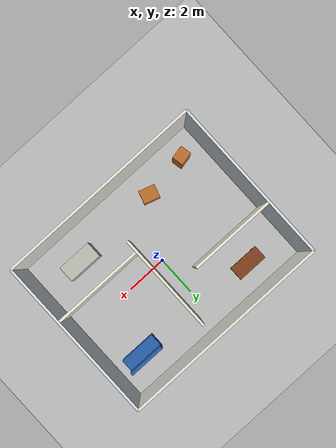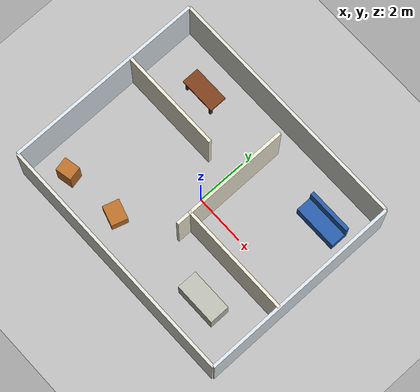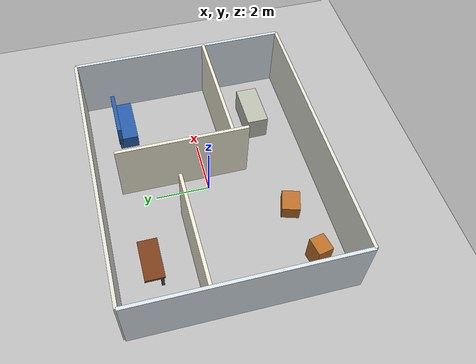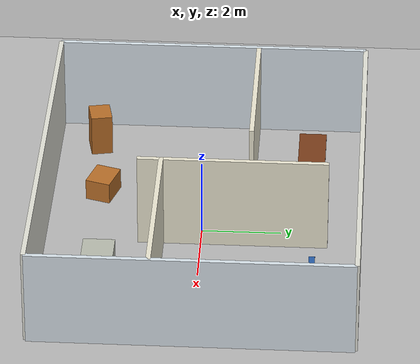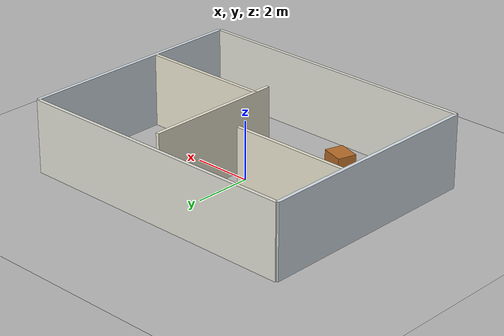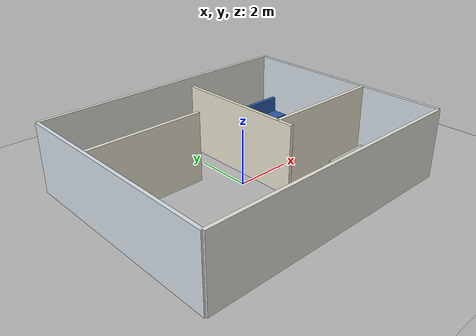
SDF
<?xml version="1.0"?>
<sdf version="1.9">
  <world name="robot_slam_indoor">
    <plugin filename="gz-sim-physics-system"
            name="gz::sim::systems::Physics"/>
    <plugin filename="gz-sim-user-commands-system"
            name="gz::sim::systems::UserCommands"/>
    <plugin filename="gz-sim-scene-broadcaster-system"
            name="gz::sim::systems::SceneBroadcaster"/>
    <plugin filename="gz-sim-sensors-system"
            name="gz::sim::systems::Sensors">
      <render_engine>ogre2</render_engine>
    </plugin>

    <gravity>0 0 -9.81</gravity>
    <physics name="default_physics" type="ignored">
      <max_step_size>0.002</max_step_size>
      <real_time_update_rate>500</real_time_update_rate>
    </physics>
    <scene>
      <ambient>0.55 0.55 0.55 1</ambient>
      <background>0.75 0.80 0.86 1</background>
      <shadows>true</shadows>
    </scene>

    <!-- A compact GUI keeps the simulator and RViz readable side by side in
         the noVNC desktop. -->
    <gui fullscreen="0">
      <plugin filename="MinimalScene" name="3D View">
        <gz-gui>
          <title>3D View</title>
          <property type="bool" key="showTitleBar">false</property>
          <property type="string" key="state">docked</property>
        </gz-gui>
        <engine>ogre2</engine>
        <scene>scene</scene>
        <ambient_light>0.55 0.55 0.55</ambient_light>
        <background_color>0.75 0.80 0.86</background_color>
        <camera_pose>-8 -10 10 0 0.62 0.73</camera_pose>
      </plugin>
      <plugin filename="GzSceneManager" name="Scene Manager">
        <gz-gui>
          <property type="bool" key="resizable">false</property>
          <property type="double" key="width">5</property>
          <property type="double" key="height">5</property>
          <property type="string" key="state">floating</property>
          <property type="bool" key="showTitleBar">false</property>
        </gz-gui>
      </plugin>
      <plugin filename="InteractiveViewControl" name="Interactive view control">
        <gz-gui>
          <property type="bool" key="resizable">false</property>
          <property type="double" key="width">5</property>
          <property type="double" key="height">5</property>
          <property type="string" key="state">floating</property>
          <property type="bool" key="showTitleBar">false</property>
        </gz-gui>
      </plugin>
      <plugin filename="WorldControl" name="World control">
        <gz-gui>
          <title>World control</title>
          <property type="bool" key="showTitleBar">false</property>
          <property type="bool" key="resizable">false</property>
          <property type="double" key="height">72</property>
          <property type="double" key="z">1</property>
          <property type="string" key="state">floating</property>
          <anchors target="3D View">
            <line own="left" target="left"/>
            <line own="bottom" target="bottom"/>
          </anchors>
        </gz-gui>
        <play_pause>true</play_pause>
        <step>true</step>
        <start_paused>false</start_paused>
        <use_event>true</use_event>
      </plugin>
      <plugin filename="WorldStats" name="World stats">
        <gz-gui>
          <title>World stats</title>
          <property type="bool" key="showTitleBar">false</property>
          <property type="bool" key="resizable">false</property>
          <property type="double" key="height">110</property>
          <property type="double" key="width">290</property>
          <property type="double" key="z">1</property>
          <property type="string" key="state">floating</property>
          <anchors target="3D View">
            <line own="right" target="right"/>
            <line own="bottom" target="bottom"/>
          </anchors>
        </gz-gui>
        <sim_time>true</sim_time>
        <real_time>true</real_time>
        <real_time_factor>true</real_time_factor>
        <iterations>true</iterations>
      </plugin>
    </gui>

    <light type="directional" name="sun">
      <cast_shadows>true</cast_shadows>
      <pose>0 0 10 0 0 0</pose>
      <diffuse>0.8 0.8 0.8 1</diffuse>
      <specular>0.2 0.2 0.2 1</specular>
      <direction>-0.5 0.1 -0.9</direction>
    </light>

    <model name="ground_plane">
      <static>true</static>
      <link name="link">
        <collision name="collision">
          <geometry><plane><normal>0 0 1</normal><size>100 100</size></plane></geometry>
        </collision>
        <visual name="visual">
          <geometry><plane><normal>0 0 1</normal><size>100 100</size></plane></geometry>
          <material>
            <ambient>0.72 0.72 0.72 1</ambient>
            <diffuse>0.72 0.72 0.72 1</diffuse>
          </material>
        </visual>
      </link>
    </model>

    <model name="indoor_environment">
      <static>true</static>

      <!-- Ten-by-eight-metre shell. The door gaps and furniture create useful
           lidar geometry instead of a featureless rectangular room. -->
      <link name="structure">
        <collision name="north_wall_collision"><pose>0 4 1.25 0 0 0</pose><geometry><box><size>10 0.12 2.5</size></box></geometry></collision>
        <visual name="north_wall_visual"><pose>0 4 1.25 0 0 0</pose><geometry><box><size>10 0.12 2.5</size></box></geometry><material><ambient>0.88 0.88 0.84 1</ambient><diffuse>0.88 0.88 0.84 1</diffuse></material></visual>

        <collision name="south_wall_collision"><pose>0 -4 1.25 0 0 0</pose><geometry><box><size>10 0.12 2.5</size></box></geometry></collision>
        <visual name="south_wall_visual"><pose>0 -4 1.25 0 0 0</pose><geometry><box><size>10 0.12 2.5</size></box></geometry><material><ambient>0.88 0.88 0.84 1</ambient><diffuse>0.88 0.88 0.84 1</diffuse></material></visual>

        <collision name="east_wall_collision"><pose>5 0 1.25 0 0 0</pose><geometry><box><size>0.12 8 2.5</size></box></geometry></collision>
        <visual name="east_wall_visual"><pose>5 0 1.25 0 0 0</pose><geometry><box><size>0.12 8 2.5</size></box></geometry><material><ambient>0.84 0.88 0.91 1</ambient><diffuse>0.84 0.88 0.91 1</diffuse></material></visual>

        <collision name="west_wall_collision"><pose>-5 0 1.25 0 0 0</pose><geometry><box><size>0.12 8 2.5</size></box></geometry></collision>
        <visual name="west_wall_visual"><pose>-5 0 1.25 0 0 0</pose><geometry><box><size>0.12 8 2.5</size></box></geometry><material><ambient>0.84 0.88 0.91 1</ambient><diffuse>0.84 0.88 0.91 1</diffuse></material></visual>

        <!-- Interior walls leave a 1.4 m central doorway and an open corridor. -->
        <collision name="partition_a_collision"><pose>0.55 0.8 1.25 0 0 0</pose><geometry><box><size>0.12 4.8 2.5</size></box></geometry></collision>
        <visual name="partition_a_visual"><pose>0.55 0.8 1.25 0 0 0</pose><geometry><box><size>0.12 4.8 2.5</size></box></geometry><material><ambient>0.92 0.90 0.82 1</ambient><diffuse>0.92 0.90 0.82 1</diffuse></material></visual>

        <collision name="partition_b_collision"><pose>2.75 -1.0 1.25 0 0 0</pose><geometry><box><size>4.5 0.12 2.5</size></box></geometry></collision>
        <visual name="partition_b_visual"><pose>2.75 -1.0 1.25 0 0 0</pose><geometry><box><size>4.5 0.12 2.5</size></box></geometry><material><ambient>0.92 0.90 0.82 1</ambient><diffuse>0.92 0.90 0.82 1</diffuse></material></visual>

        <collision name="partition_c_collision"><pose>-2.9 1.2 1.25 0 0 0</pose><geometry><box><size>4.1 0.12 2.5</size></box></geometry></collision>
        <visual name="partition_c_visual"><pose>-2.9 1.2 1.25 0 0 0</pose><geometry><box><size>4.1 0.12 2.5</size></box></geometry><material><ambient>0.92 0.90 0.82 1</ambient><diffuse>0.92 0.90 0.82 1</diffuse></material></visual>

        <!-- Desk -->
        <collision name="desk_top_collision"><pose>-2.8 2.7 0.72 0 0 0</pose><geometry><box><size>1.5 0.7 0.10</size></box></geometry></collision>
        <visual name="desk_top_visual"><pose>-2.8 2.7 0.72 0 0 0</pose><geometry><box><size>1.5 0.7 0.10</size></box></geometry><material><ambient>0.40 0.19 0.08 1</ambient><diffuse>0.48 0.24 0.10 1</diffuse></material></visual>
        <collision name="desk_leg_1_collision"><pose>-3.42 2.45 0.35 0 0 0</pose><geometry><box><size>0.10 0.10 0.70</size></box></geometry></collision>
        <visual name="desk_leg_1_visual"><pose>-3.42 2.45 0.35 0 0 0</pose><geometry><box><size>0.10 0.10 0.70</size></box></geometry><material><ambient>0.28 0.28 0.28 1</ambient></material></visual>
        <collision name="desk_leg_2_collision"><pose>-2.18 2.45 0.35 0 0 0</pose><geometry><box><size>0.10 0.10 0.70</size></box></geometry></collision>
        <visual name="desk_leg_2_visual"><pose>-2.18 2.45 0.35 0 0 0</pose><geometry><box><size>0.10 0.10 0.70</size></box></geometry><material><ambient>0.28 0.28 0.28 1</ambient></material></visual>

        <!-- Sofa -->
        <collision name="sofa_base_collision"><pose>3.55 2.55 0.28 0 0 0</pose><geometry><box><size>1.8 0.72 0.56</size></box></geometry></collision>
        <visual name="sofa_base_visual"><pose>3.55 2.55 0.28 0 0 0</pose><geometry><box><size>1.8 0.72 0.56</size></box></geometry><material><ambient>0.12 0.30 0.55 1</ambient><diffuse>0.15 0.36 0.65 1</diffuse></material></visual>
        <collision name="sofa_back_collision"><pose>3.55 2.86 0.70 0 0 0</pose><geometry><box><size>1.8 0.15 0.85</size></box></geometry></collision>
        <visual name="sofa_back_visual"><pose>3.55 2.86 0.70 0 0 0</pose><geometry><box><size>1.8 0.15 0.85</size></box></geometry><material><ambient>0.12 0.30 0.55 1</ambient><diffuse>0.15 0.36 0.65 1</diffuse></material></visual>

        <!-- Kitchen island and two asymmetric boxes help scan matching. -->
        <collision name="island_collision"><pose>2.8 -2.45 0.48 0 0 0</pose><geometry><box><size>1.7 0.8 0.96</size></box></geometry></collision>
        <visual name="island_visual"><pose>2.8 -2.45 0.48 0 0 0</pose><geometry><box><size>1.7 0.8 0.96</size></box></geometry><material><ambient>0.66 0.67 0.62 1</ambient><diffuse>0.72 0.73 0.68 1</diffuse></material></visual>

        <collision name="crate_tall_collision"><pose>-3.8 -2.9 0.55 0 0 0.2</pose><geometry><box><size>0.65 0.55 1.10</size></box></geometry></collision>
        <visual name="crate_tall_visual"><pose>-3.8 -2.9 0.55 0 0 0.2</pose><geometry><box><size>0.65 0.55 1.10</size></box></geometry><material><ambient>0.62 0.36 0.12 1</ambient><diffuse>0.72 0.43 0.16 1</diffuse></material></visual>

        <collision name="crate_low_collision"><pose>-1.6 -2.65 0.28 0 0 -0.3</pose><geometry><box><size>0.8 0.65 0.56</size></box></geometry></collision>
        <visual name="crate_low_visual"><pose>-1.6 -2.65 0.28 0 0 -0.3</pose><geometry><box><size>0.8 0.65 0.56</size></box></geometry><material><ambient>0.62 0.36 0.12 1</ambient><diffuse>0.72 0.43 0.16 1</diffuse></material></visual>
      </link>
    </model>

  </world>
</sdf>
